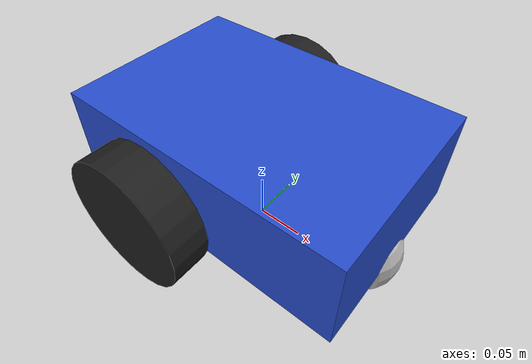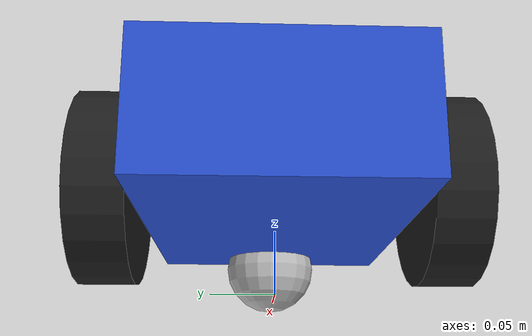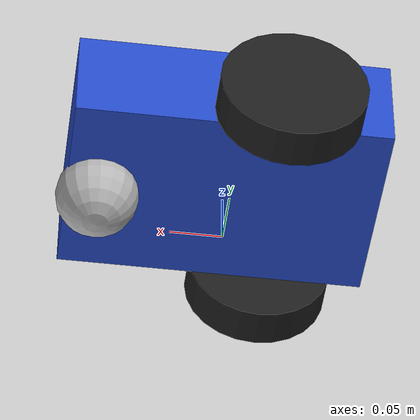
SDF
<?xml version="1.0"?>
<sdf version="1.6">
  <model name="depth_bot">
    <pose>0 0 0.1 0 0 0</pose>

    <link name="base_link">
      <inertial>
        <mass>5.0</mass>
        <inertia><ixx>0.05</ixx><iyy>0.05</iyy><izz>0.08</izz>
                 <ixy>0</ixy><ixz>0</ixz><iyz>0</iyz></inertia>
      </inertial>
      <collision name="c"><geometry><box><size>0.3 0.2 0.1</size></box></geometry></collision>
      <visual name="v">
        <geometry><box><size>0.3 0.2 0.1</size></box></geometry>
        <material><script><uri>file://media/materials/scripts/gazebo.material</uri><name>Gazebo/Blue</name></script></material>
      </visual>

      <!-- Depth camera mounted at the front -->
      <sensor name="depth_camera" type="depth">
        <pose>0.16 0 0.05 0 0 0</pose>
        <update_rate>20</update_rate>
        <camera>
          <horizontal_fov>1.047</horizontal_fov>
          <image><width>640</width><height>480</height><format>R8G8B8</format></image>
          <clip><near>0.1</near><far>10.0</far></clip>
        </camera>
        <plugin name="depth_cam" filename="libgazebo_ros_camera.so">
          <ros><namespace>depth_camera</namespace></ros>
          <camera_name>depth_camera</camera_name>
          <frame_name>depth_camera_optical_frame</frame_name>
          <min_depth>0.1</min_depth>
          <max_depth>10.0</max_depth>
        </plugin>
      </sensor>
    </link>

    <link name="left_wheel">
      <pose>-0.05 0.12 -0.03 -1.5708 0 0</pose>
      <inertial><mass>0.3</mass>
        <inertia><ixx>0.001</ixx><iyy>0.001</iyy><izz>0.001</izz>
                 <ixy>0</ixy><ixz>0</ixz><iyz>0</iyz></inertia></inertial>
      <collision name="c"><geometry><cylinder><radius>0.07</radius><length>0.04</length></cylinder></geometry></collision>
      <visual name="v"><geometry><cylinder><radius>0.07</radius><length>0.04</length></cylinder></geometry>
        <material><script><name>Gazebo/Black</name></script></material></visual>
    </link>
    <link name="right_wheel">
      <pose>-0.05 -0.12 -0.03 -1.5708 0 0</pose>
      <inertial><mass>0.3</mass>
        <inertia><ixx>0.001</ixx><iyy>0.001</iyy><izz>0.001</izz>
                 <ixy>0</ixy><ixz>0</ixz><iyz>0</iyz></inertia></inertial>
      <collision name="c"><geometry><cylinder><radius>0.07</radius><length>0.04</length></cylinder></geometry></collision>
      <visual name="v"><geometry><cylinder><radius>0.07</radius><length>0.04</length></cylinder></geometry>
        <material><script><name>Gazebo/Black</name></script></material></visual>
    </link>
    <link name="caster">
      <pose>0.12 0 -0.06 0 0 0</pose>
      <inertial><mass>0.1</mass>
        <inertia><ixx>0.0001</ixx><iyy>0.0001</iyy><izz>0.0001</izz>
                 <ixy>0</ixy><ixz>0</ixz><iyz>0</iyz></inertia></inertial>
      <collision name="c"><geometry><sphere><radius>0.04</radius></sphere></geometry>
        <surface><friction><ode><mu>0.0</mu><mu2>0.0</mu2></ode></friction></surface></collision>
      <visual name="v"><geometry><sphere><radius>0.04</radius></sphere></geometry></visual>
    </link>

    <joint name="left_wheel_joint" type="revolute">
      <parent>base_link</parent><child>left_wheel</child>
      <axis><xyz>0 0 1</xyz></axis>
    </joint>
    <joint name="right_wheel_joint" type="revolute">
      <parent>base_link</parent><child>right_wheel</child>
      <axis><xyz>0 0 1</xyz></axis>
    </joint>
    <joint name="caster_joint" type="ball">
      <parent>base_link</parent><child>caster</child>
    </joint>

    <plugin name="diff_drive" filename="libgazebo_ros_diff_drive.so">
      <ros></ros>
      <left_joint>left_wheel_joint</left_joint>
      <right_joint>right_wheel_joint</right_joint>
      <wheel_separation>0.24</wheel_separation>
      <wheel_diameter>0.14</wheel_diameter>
      <max_wheel_torque>10</max_wheel_torque>
      <command_topic>cmd_vel</command_topic>
      <odometry_topic>odom</odometry_topic>
      <odometry_frame>odom</odometry_frame>
      <robot_base_frame>base_link</robot_base_frame>
      <publish_odom>true</publish_odom>
      <publish_odom_tf>true</publish_odom_tf>
      <publish_wheel_tf>true</publish_wheel_tf>
    </plugin>
  </model>
</sdf>
